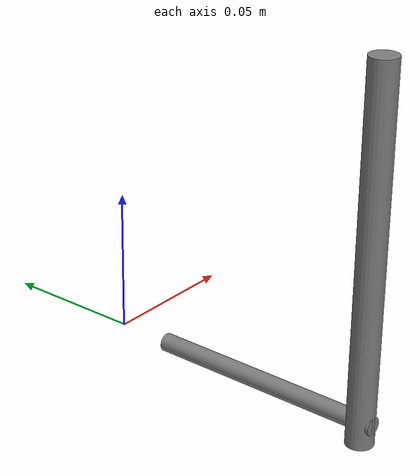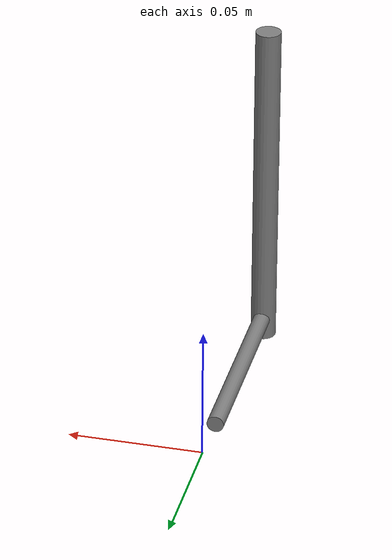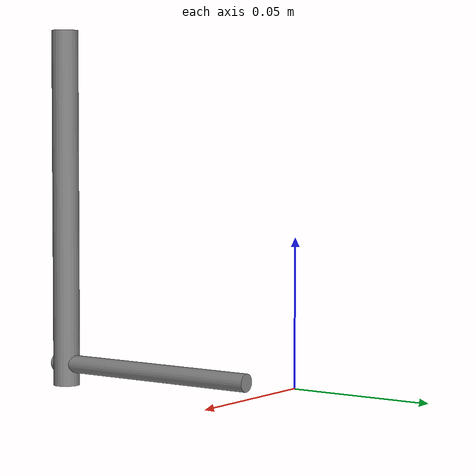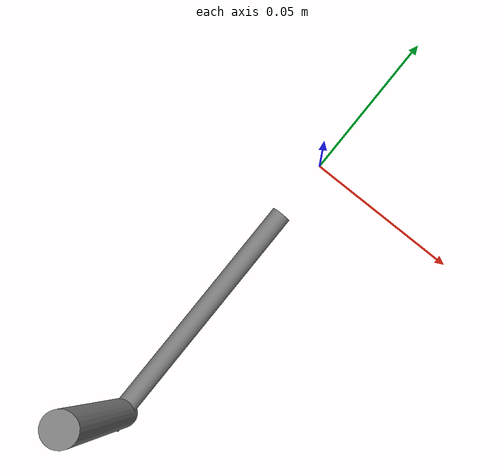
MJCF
<?xml version="1.0" encoding="utf-8"?>
<mujoco model="qube">
    <compiler angle="radian" meshdir="../meshes/" />
    <option timestep="0.01" integrator="RK4" />
    <size njmax="500" nconmax="100" />

    <visual>
        <global offwidth="2560" offheight="1329" />
    </visual>

    <worldbody>
        <light pos="0.051036 -0.0321818 0.5" dir="0 0 -1" diffuse="0.8 0.8 0.8" specular="0.9 0.9 0.9" />
        <body name="arm" pos="0 -0.019632 0">
            <inertial pos="0 -0.0425 0" quat="0.707107 0.707107 0 0" mass="0.095" diaginertia="5.7439e-05 5.7439e-05 4.82153e-07" />
            <joint name="base_motor" pos="0 0 0" axis="0 0 1" range="-90 90" damping="0.0001" />
            <joint name="arm_pole" pos="0 0 0" axis="0 1 0" range="-90 90"/>
            <geom name="qube0:arm" size="0.003186 0.0425" pos="0 -0.0425 0" quat="0.707107 0.707107 0 0" type="cylinder" friction="0 0 0" />
            <body name="pole" pos="0 -0.080312 0">
                <inertial pos="0 0 0.05654" quat="0 1 0 0" mass="0.024" diaginertia="3.34191e-05 3.34191e-05 2.74181e-07" />
                <geom name="qube0:pole" size="0.00478 0.0645" pos="0 0 0.05654" quat="0 1 0 0" type="cylinder" friction="0 0 0" />
            </body>
        </body>
    </worldbody>

    <actuator>
        <general name="motor_rotation" joint="base_motor" ctrllimited="true" ctrlrange="-18 18" gear="1 0 0 0 0 0" />
    </actuator>
</mujoco>
